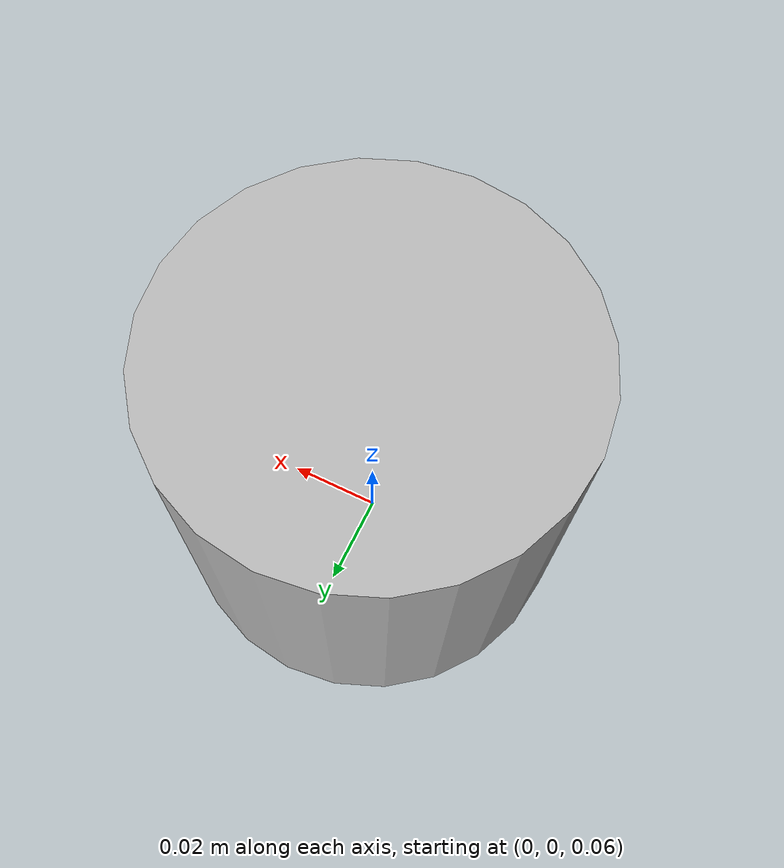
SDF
<?xml version="1.0" ?>
<sdf version="1.5">
  <model name="velodyne_hdl-32">

  <!-- Give the base link a unique name -->
  <link name="top">
<!-- Add a ray sensor, and give it a name -->
<sensor type="ray" name="sensor">

  <pose>0 0 -0.004645 1.5707 0 0</pose>

  <!-- Enable visualization to see the rays in the GUI -->
  <visualize>true</visualize>

  <!-- Set the update rate of the sensor -->
  <update_rate>30</update_rate>

<ray>

	  <noise>
      <!-- Use gaussian noise -->
      <type>gaussian</type>
      <mean>0.0</mean>
      <stddev>0.02</stddev>
    </noise>

  <!-- The scan element contains the horizontal and vertical beams.
       We are leaving out the vertical beams for this tutorial. -->

  <scan>

    <!-- The horizontal beams -->
    <horizontal>
      <!-- The velodyne has 'n' number of beams(samples) -->
      <samples>7</samples>

      <resolution>1</resolution>

      <!-- Minimum angle in radians -->
      <min_angle>-0.523599</min_angle>

      <!-- Maximum angle in radians -->
      <max_angle>0.523599</max_angle>
    </horizontal>
  </scan>

  <!-- Range defines characteristics of an individual beam -->
  <range>

    <!-- Minimum distance of the beam -->
    <min>0.05</min>

    <!-- Maximum distance of the beam -->
    <max>70</max>

    <!-- Linear resolution of the beam -->
    <resolution>0.02</resolution>
  </range>
</ray>
</sensor>

    <!-- Vertically offset the top cylinder by the length of the bottom
        cylinder and half the length of this cylinder. -->
    <pose>0 0 0.095455 0 0 0</pose>

  <inertial>
     <mass>0.1</mass>
     <inertia>
       <ixx>0.000090623</ixx>
       <iyy>0.000090623</iyy>
       <izz>0.000091036</izz>
       <ixy>0</ixy>
       <ixz>0</ixz>
       <iyz>0</iyz>
     </inertia>
   </inertial>

    <collision name="top_collision">
      <geometry>
        <cylinder>
          <!-- Radius and length provided by Velodyne -->
          <radius>0.04267</radius>
          <length>0.07357</length>
        </cylinder>
      </geometry>
    </collision>

    <!-- The visual is mostly a copy of the collision -->
    <visual name="top_visual">
      <geometry>
        <cylinder>
          <radius>0.04267</radius>
          <length>0.07357</length>
        </cylinder>
      </geometry>
    </visual>
  </link>

</model>
</sdf>
